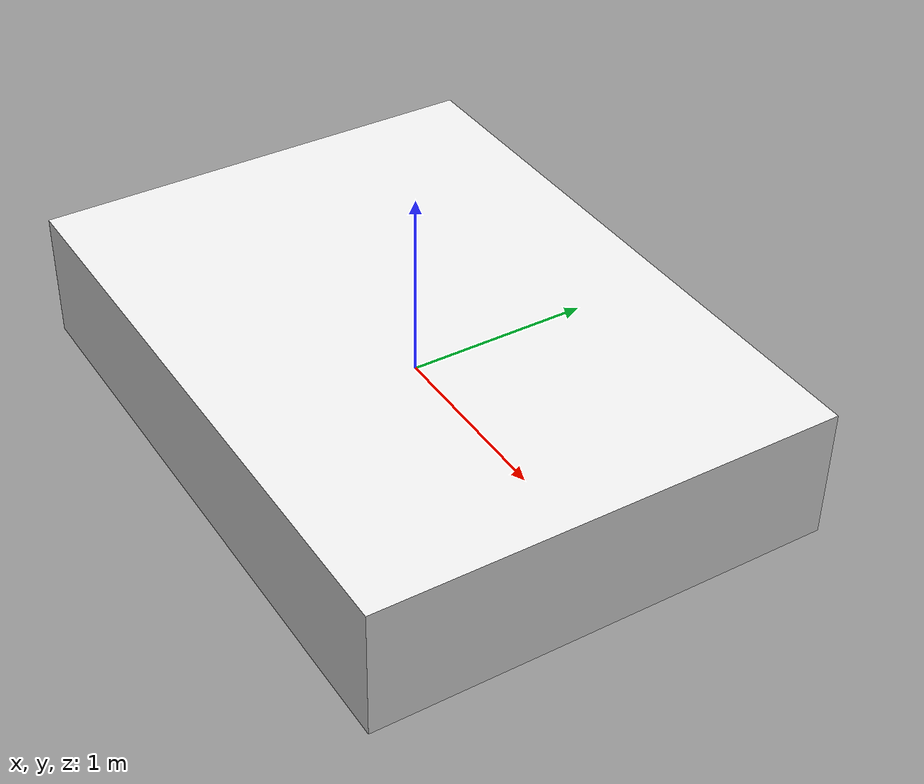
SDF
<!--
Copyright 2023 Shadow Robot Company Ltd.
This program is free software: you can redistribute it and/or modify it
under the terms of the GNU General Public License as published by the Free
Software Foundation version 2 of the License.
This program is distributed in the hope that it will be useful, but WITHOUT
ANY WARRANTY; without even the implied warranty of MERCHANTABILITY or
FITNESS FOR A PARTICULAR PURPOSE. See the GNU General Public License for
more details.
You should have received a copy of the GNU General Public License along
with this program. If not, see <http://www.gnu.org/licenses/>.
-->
<?xml version='1.0'?>

<sdf version="1.4">
<model name="big_table">
    <static>true</static>
    <link name="link">
      <collision name="collision_big_table">
        <geometry>
          <box>
            <size>3.4 2.5 0.713</size>
          </box>
        </geometry>
      </collision>
      <visual name="visual_big_table">
        <geometry>
          <box>
            <size>3.4 2.5 0.713</size>
          </box>
        </geometry>
        <material>
          <script>
            <uri>file://media/materials/scripts/gazebo.material</uri>
            <name>Gazebo/White</name>
          </script>
        </material>
      </visual>
    </link>
  </model>
</sdf>
